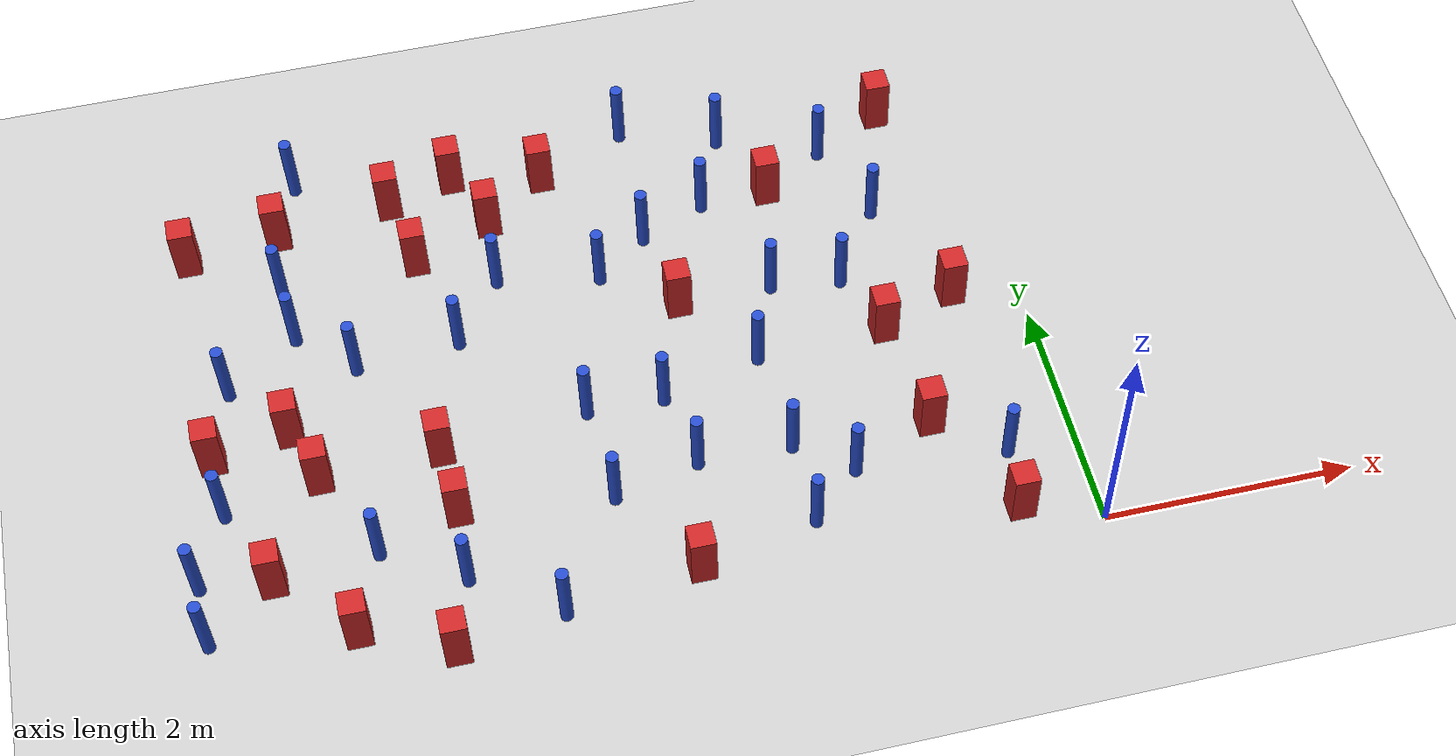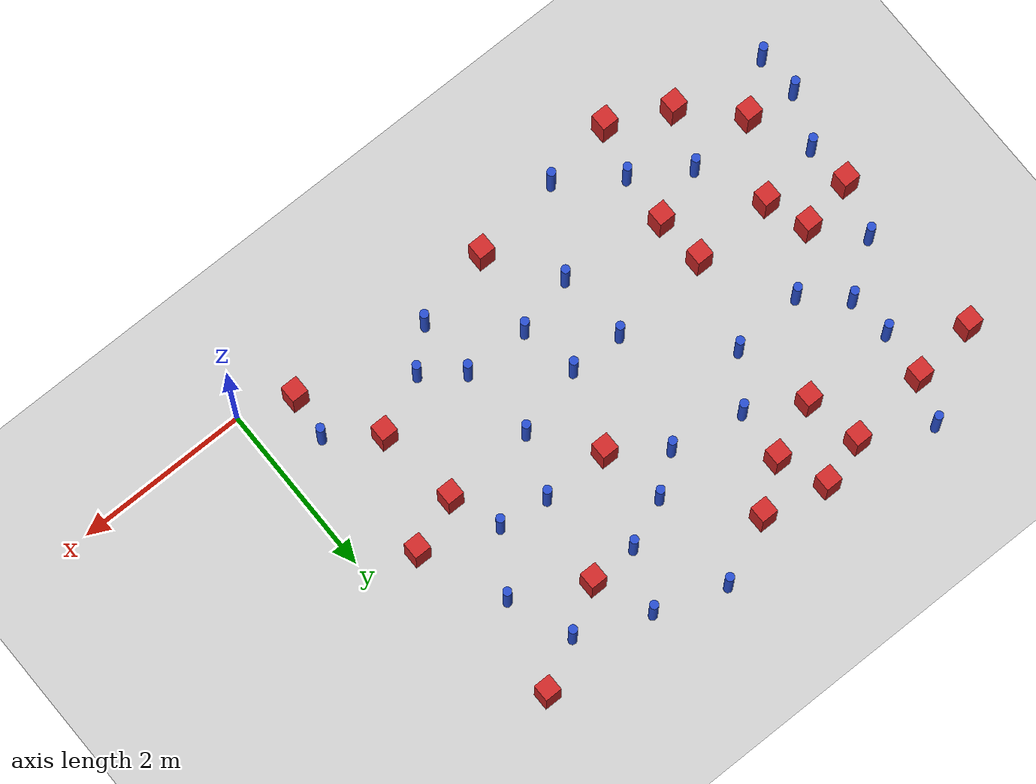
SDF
<sdf version="1.6">
 <world name="default">
  <model name="ground_plane">
   <static>1</static>
   <link name="link">
    <collision name="collision">
     <geometry><plane><normal>0 0 1</normal><size>100 100</size></plane></geometry>
     <surface><friction><ode><mu>100</mu><mu2>50</mu2></ode></friction></surface>
    </collision>
    <visual name="visual">
     <cast_shadows>0</cast_shadows>
     <geometry><plane><normal>0 0 1</normal><size>100 100</size></plane></geometry>
     <material>
      <ambient>1.0 1.0 1.0 1.0</ambient>
      <diffuse>0.8 0.8 0.8 1.0</diffuse>
      <specular>0.01 0.01 0.01 1.000000</specular>
     </material>
    </visual>
   </link>
  </model>
  <model name="pole_obstacle10">
   <static>true</static>
   <pose>-2.84747566872 4.63940066756 -9.47619616065e-06 5.49618799738e-07 2.3631041406e-07 -1.55090534801e-07</pose>
   <link name="link">
    <pose>0 0 0.3 0 -0 0</pose>
    <inertial>
     <mass>1</mass>
     <inertia><ixx>0.145833</ixx><ixy>0</ixy><ixz>0</ixz><iyy>0.145833</iyy><iyz>0</iyz><izz>0.125</izz></inertia>
    </inertial>
    <collision name="collision">
     <geometry><cylinder><radius>0.05</radius><length>.6</length></cylinder></geometry>
    </collision>
    <visual name="visual">
     <geometry><cylinder><radius>0.05</radius><length>.6</length></cylinder></geometry>
     <material>
      <script><name>Gazebo/Blue</name><uri>file://media/materials/scripts/gazebo.material</uri></script>
     </material>
    </visual>
   </link>
  </model>
  <model name="pole_obstacle13">
   <static>true</static>
   <pose>-2.05536858582 4.37401003135 -9.47619616065e-06 5.49618799738e-07 2.3631041406e-07 -1.55090534801e-07</pose>
   <link name="link">
    <pose>0 0 0.3 0 -0 0</pose>
    <inertial>
     <mass>1</mass>
     <inertia><ixx>0.145833</ixx><ixy>0</ixy><ixz>0</ixz><iyy>0.145833</iyy><iyz>0</iyz><izz>0.125</izz></inertia>
    </inertial>
    <collision name="collision">
     <geometry><cylinder><radius>0.05</radius><length>.6</length></cylinder></geometry>
    </collision>
    <visual name="visual">
     <geometry><cylinder><radius>0.05</radius><length>.6</length></cylinder></geometry>
     <material>
      <script><name>Gazebo/Blue</name><uri>file://media/materials/scripts/gazebo.material</uri></script>
     </material>
    </visual>
   </link>
  </model>
  <model name="square_post_obstacle23">
   <static>true</static>
   <pose>-6.5617187562 2.06889968131 -6.11067671241e-07 -5.50515727128e-06 -8.79689657224e-07 2.37013304536e-05</pose>
   <link name="link">
    <pose>0 0 0.25 0 -0 0</pose>
    <inertial>
     <mass>100</mass>
     <inertia>
      <ixx>0.166667</ixx>
      <ixy>0</ixy>
      <ixz>0</ixz>
      <iyy>0.166667</iyy>
      <iyz>0</iyz>
      <izz>0.166667</izz>
     </inertia>
    </inertial>
    <collision name="collision"><geometry><box><size>.2 .2 .5</size></box></geometry></collision>
    <visual name="visual">
     <geometry><box><size>.2 .2 .5</size></box></geometry>
     <material>
      <script><name>Gazebo/Red</name><uri>file://media/materials/scripts/gazebo.material</uri></script>
     </material>
    </visual>
   </link>
  </model>
  <model name="pole_obstacle19">
   <static>true</static>
   <pose>-1.96474461746 2.74154351915 -9.47619616065e-06 5.49618799737e-07 2.36310414076e-07 -1.55090534791e-07</pose>
   <link name="link">
    <pose>0 0 0.3 0 -0 0</pose>
    <inertial>
     <mass>1</mass>
     <inertia><ixx>0.145833</ixx><ixy>0</ixy><ixz>0</ixz><iyy>0.145833</iyy><iyz>0</iyz><izz>0.125</izz></inertia>
    </inertial>
    <collision name="collision">
     <geometry><cylinder><radius>0.05</radius><length>.6</length></cylinder></geometry>
    </collision>
    <visual name="visual">
     <geometry><cylinder><radius>0.05</radius><length>.6</length></cylinder></geometry>
     <material>
      <script><name>Gazebo/Blue</name><uri>file://media/materials/scripts/gazebo.material</uri></script>
     </material>
    </visual>
   </link>
  </model>
  <model name="square_post_obstacle33">
   <static>true</static>
   <pose>-2.73946210655 2.73730281667 -6.11067671241e-07 -5.50515727128e-06 -8.79689657224e-07 2.37013304536e-05</pose>
   <link name="link">
    <pose>0 0 0.25 0 -0 0</pose>
    <inertial>
     <mass>100</mass>
     <inertia>
      <ixx>0.166667</ixx>
      <ixy>0</ixy>
      <ixz>0</ixz>
      <iyy>0.166667</iyy>
      <iyz>0</iyz>
      <izz>0.166667</izz>
     </inertia>
    </inertial>
    <collision name="collision"><geometry><box><size>.2 .2 .5</size></box></geometry></collision>
    <visual name="visual">
     <geometry><box><size>.2 .2 .5</size></box></geometry>
     <material>
      <script><name>Gazebo/Red</name><uri>file://media/materials/scripts/gazebo.material</uri></script>
     </material>
    </visual>
   </link>
  </model>
  <model name="square_post_obstacle35">
   <static>true</static>
   <pose>-5.81347621405 4.17306674469 -6.11067671241e-07 -5.50515727128e-06 -8.79689657224e-07 2.37013304536e-05</pose>
   <link name="link">
    <pose>0 0 0.25 0 -0 0</pose>
    <inertial>
     <mass>100</mass>
     <inertia>
      <ixx>0.166667</ixx>
      <ixy>0</ixy>
      <ixz>0</ixz>
      <iyy>0.166667</iyy>
      <iyz>0</iyz>
      <izz>0.166667</izz>
     </inertia>
    </inertial>
    <collision name="collision"><geometry><box><size>.2 .2 .5</size></box></geometry></collision>
    <visual name="visual">
     <geometry><box><size>.2 .2 .5</size></box></geometry>
     <material>
      <script><name>Gazebo/Red</name><uri>file://media/materials/scripts/gazebo.material</uri></script>
     </material>
    </visual>
   </link>
  </model>
  <model name="pole_obstacle34">
   <static>true</static>
   <pose>-1.74104892177 0.853488563176 -9.47619616065e-06 5.49618799737e-07 2.36310414065e-07 -1.55090534798e-07</pose>
   <link name="link">
    <pose>0 0 0.3 0 -0 0</pose>
    <inertial>
     <mass>1</mass>
     <inertia><ixx>0.145833</ixx><ixy>0</ixy><ixz>0</ixz><iyy>0.145833</iyy><iyz>0</iyz><izz>0.125</izz></inertia>
    </inertial>
    <collision name="collision">
     <geometry><cylinder><radius>0.05</radius><length>.6</length></cylinder></geometry>
    </collision>
    <visual name="visual">
     <geometry><cylinder><radius>0.05</radius><length>.6</length></cylinder></geometry>
     <material>
      <script><name>Gazebo/Blue</name><uri>file://media/materials/scripts/gazebo.material</uri></script>
     </material>
    </visual>
   </link>
  </model>
  <model name="square_post_obstacle37">
   <static>true</static>
   <pose>-5.7784485124 1.70773281834 -6.11067671241e-07 -5.50515727128e-06 -8.79689657224e-07 2.37013304536e-05</pose>
   <link name="link">
    <pose>0 0 0.25 0 -0 0</pose>
    <inertial>
     <mass>100</mass>
     <inertia>
      <ixx>0.166667</ixx>
      <ixy>0</ixy>
      <ixz>0</ixz>
      <iyy>0.166667</iyy>
      <iyz>0</iyz>
      <izz>0.166667</izz>
     </inertia>
    </inertial>
    <collision name="collision"><geometry><box><size>.2 .2 .5</size></box></geometry></collision>
    <visual name="visual">
     <geometry><box><size>.2 .2 .5</size></box></geometry>
     <material>
      <script><name>Gazebo/Red</name><uri>file://media/materials/scripts/gazebo.material</uri></script>
     </material>
    </visual>
   </link>
  </model>
  <model name="pole_obstacle40">
   <static>true</static>
   <pose>-0.968410337781 3.31538458042 -9.47619616065e-06 5.49618799737e-07 2.36310414063e-07 -1.55090534799e-07</pose>
   <link name="link">
    <pose>0 0 0.3 0 -0 0</pose>
    <inertial>
     <mass>1</mass>
     <inertia><ixx>0.145833</ixx><ixy>0</ixy><ixz>0</ixz><iyy>0.145833</iyy><iyz>0</iyz><izz>0.125</izz></inertia>
    </inertial>
    <collision name="collision">
     <geometry><cylinder><radius>0.05</radius><length>.6</length></cylinder></geometry>
    </collision>
    <visual name="visual">
     <geometry><cylinder><radius>0.05</radius><length>.6</length></cylinder></geometry>
     <material>
      <script><name>Gazebo/Blue</name><uri>file://media/materials/scripts/gazebo.material</uri></script>
     </material>
    </visual>
   </link>
  </model>
  <model name="pole_obstacle47">
   <static>true</static>
   <pose>-3.65769776 1.86082493029 -9.47619616065e-06 5.49618799737e-07 2.36310414072e-07 -1.55090534793e-07</pose>
   <link name="link">
    <pose>0 0 0.3 0 -0 0</pose>
    <inertial>
     <mass>1</mass>
     <inertia><ixx>0.145833</ixx><ixy>0</ixy><ixz>0</ixz><iyy>0.145833</iyy><iyz>0</iyz><izz>0.125</izz></inertia>
    </inertial>
    <collision name="collision">
     <geometry><cylinder><radius>0.05</radius><length>.6</length></cylinder></geometry>
    </collision>
    <visual name="visual">
     <geometry><cylinder><radius>0.05</radius><length>.6</length></cylinder></geometry>
     <material>
      <script><name>Gazebo/Blue</name><uri>file://media/materials/scripts/gazebo.material</uri></script>
     </material>
    </visual>
   </link>
  </model>
  <model name="pole_obstacle55">
   <static>true</static>
   <pose>-1.39737739641 2.67019656271 -9.47619616065e-06 5.49618799737e-07 2.36310414062e-07 -1.55090534798e-07</pose>
   <link name="link">
    <pose>0 0 0.3 0 -0 0</pose>
    <inertial>
     <mass>1</mass>
     <inertia><ixx>0.145833</ixx><ixy>0</ixy><ixz>0</ixz><iyy>0.145833</iyy><iyz>0</iyz><izz>0.125</izz></inertia>
    </inertial>
    <collision name="collision">
     <geometry><cylinder><radius>0.05</radius><length>.6</length></cylinder></geometry>
    </collision>
    <visual name="visual">
     <geometry><cylinder><radius>0.05</radius><length>.6</length></cylinder></geometry>
     <material>
      <script><name>Gazebo/Blue</name><uri>file://media/materials/scripts/gazebo.material</uri></script>
     </material>
    </visual>
   </link>
  </model>
  <model name="pole_obstacle63">
   <static>true</static>
   <pose>-5.62077184653 4.68506538649 -9.47619616065e-06 5.49618799737e-07 2.36310414037e-07 -1.55090534814e-07</pose>
   <link name="link">
    <pose>0 0 0.3 0 -0 0</pose>
    <inertial>
     <mass>1</mass>
     <inertia><ixx>0.145833</ixx><ixy>0</ixy><ixz>0</ixz><iyy>0.145833</iyy><iyz>0</iyz><izz>0.125</izz></inertia>
    </inertial>
    <collision name="collision">
     <geometry><cylinder><radius>0.05</radius><length>.6</length></cylinder></geometry>
    </collision>
    <visual name="visual">
     <geometry><cylinder><radius>0.05</radius><length>.6</length></cylinder></geometry>
     <material>
      <script><name>Gazebo/Blue</name><uri>file://media/materials/scripts/gazebo.material</uri></script>
     </material>
    </visual>
   </link>
  </model>
  <model name="square_post_obstacle67">
   <static>true</static>
   <pose>-4.82985129881 1.74842242431 -6.11067671241e-07 -5.50515727128e-06 -8.79689657224e-07 2.37013304536e-05</pose>
   <link name="link">
    <pose>0 0 0.25 0 -0 0</pose>
    <inertial>
     <mass>100</mass>
     <inertia>
      <ixx>0.166667</ixx>
      <ixy>0</ixy>
      <ixz>0</ixz>
      <iyy>0.166667</iyy>
      <iyz>0</iyz>
      <izz>0.166667</izz>
     </inertia>
    </inertial>
    <collision name="collision"><geometry><box><size>.2 .2 .5</size></box></geometry></collision>
    <visual name="visual">
     <geometry><box><size>.2 .2 .5</size></box></geometry>
     <material>
      <script><name>Gazebo/Red</name><uri>file://media/materials/scripts/gazebo.material</uri></script>
     </material>
    </visual>
   </link>
  </model>
  <model name="square_post_obstacle68">
   <static>true</static>
   <pose>-4.74384137208 3.6503750225 -6.11067671241e-07 -5.50515727128e-06 -8.79689657224e-07 2.37013304536e-05</pose>
   <link name="link">
    <pose>0 0 0.25 0 -0 0</pose>
    <inertial>
     <mass>100</mass>
     <inertia>
      <ixx>0.166667</ixx>
      <ixy>0</ixy>
      <ixz>0</ixz>
      <iyy>0.166667</iyy>
      <iyz>0</iyz>
      <izz>0.166667</izz>
     </inertia>
    </inertial>
    <collision name="collision"><geometry><box><size>.2 .2 .5</size></box></geometry></collision>
    <visual name="visual">
     <geometry><box><size>.2 .2 .5</size></box></geometry>
     <material>
      <script><name>Gazebo/Red</name><uri>file://media/materials/scripts/gazebo.material</uri></script>
     </material>
    </visual>
   </link>
  </model>
  <model name="pole_obstacle85">
   <static>true</static>
   <pose>-2.33176359525 3.71400270867 -9.47619616065e-06 5.49618799737e-07 2.36310414051e-07 -1.55090534807e-07</pose>
   <link name="link">
    <pose>0 0 0.3 0 -0 0</pose>
    <inertial>
     <mass>1</mass>
     <inertia><ixx>0.145833</ixx><ixy>0</ixy><ixz>0</ixz><iyy>0.145833</iyy><iyz>0</iyz><izz>0.125</izz></inertia>
    </inertial>
    <collision name="collision">
     <geometry><cylinder><radius>0.05</radius><length>.6</length></cylinder></geometry>
    </collision>
    <visual name="visual">
     <geometry><cylinder><radius>0.05</radius><length>.6</length></cylinder></geometry>
     <material>
      <script><name>Gazebo/Blue</name><uri>file://media/materials/scripts/gazebo.material</uri></script>
     </material>
    </visual>
   </link>
  </model>
  <model name="pole_obstacle89">
   <static>true</static>
   <pose>-3.04312974617 1.84816979758 -9.47619616065e-06 5.49618799737e-07 2.36310414072e-07 -1.55090534793e-07</pose>
   <link name="link">
    <pose>0 0 0.3 0 -0 0</pose>
    <inertial>
     <mass>1</mass>
     <inertia><ixx>0.145833</ixx><ixy>0</ixy><ixz>0</ixz><iyy>0.145833</iyy><iyz>0</iyz><izz>0.125</izz></inertia>
    </inertial>
    <collision name="collision">
     <geometry><cylinder><radius>0.05</radius><length>.6</length></cylinder></geometry>
    </collision>
    <visual name="visual">
     <geometry><cylinder><radius>0.05</radius><length>.6</length></cylinder></geometry>
     <material>
      <script><name>Gazebo/Blue</name><uri>file://media/materials/scripts/gazebo.material</uri></script>
     </material>
    </visual>
   </link>
  </model>
  <model name="pole_obstacle90">
   <static>true</static>
   <pose>-2.23216415459 2.0634316478 -9.47619616065e-06 5.49618799737e-07 2.36310414051e-07 -1.55090534807e-07</pose>
   <link name="link">
    <pose>0 0 0.3 0 -0 0</pose>
    <inertial>
     <mass>1</mass>
     <inertia><ixx>0.145833</ixx><ixy>0</ixy><ixz>0</ixz><iyy>0.145833</iyy><iyz>0</iyz><izz>0.125</izz></inertia>
    </inertial>
    <collision name="collision">
     <geometry><cylinder><radius>0.05</radius><length>.6</length></cylinder></geometry>
    </collision>
    <visual name="visual">
     <geometry><cylinder><radius>0.05</radius><length>.6</length></cylinder></geometry>
     <material>
      <script><name>Gazebo/Blue</name><uri>file://media/materials/scripts/gazebo.material</uri></script>
     </material>
    </visual>
   </link>
  </model>
  <model name="pole_obstacle93">
   <static>true</static>
   <pose>-2.87588941284 3.47614644575 -9.47619616065e-06 5.49618799737e-07 2.36310414051e-07 -1.55090534807e-07</pose>
   <link name="link">
    <pose>0 0 0.3 0 -0 0</pose>
    <inertial>
     <mass>1</mass>
     <inertia><ixx>0.145833</ixx><ixy>0</ixy><ixz>0</ixz><iyy>0.145833</iyy><iyz>0</iyz><izz>0.125</izz></inertia>
    </inertial>
    <collision name="collision">
     <geometry><cylinder><radius>0.05</radius><length>.6</length></cylinder></geometry>
    </collision>
    <visual name="visual">
     <geometry><cylinder><radius>0.05</radius><length>.6</length></cylinder></geometry>
     <material>
      <script><name>Gazebo/Blue</name><uri>file://media/materials/scripts/gazebo.material</uri></script>
     </material>
    </visual>
   </link>
  </model>
  <model name="pole_obstacle96">
   <static>true</static>
   <pose>-5.36302089445 2.70412115634 -9.47619616065e-06 5.49618799738e-07 2.36310414051e-07 -1.55090534805e-07</pose>
   <link name="link">
    <pose>0 0 0.3 0 -0 0</pose>
    <inertial>
     <mass>1</mass>
     <inertia><ixx>0.145833</ixx><ixy>0</ixy><ixz>0</ixz><iyy>0.145833</iyy><iyz>0</iyz><izz>0.125</izz></inertia>
    </inertial>
    <collision name="collision">
     <geometry><cylinder><radius>0.05</radius><length>.6</length></cylinder></geometry>
    </collision>
    <visual name="visual">
     <geometry><cylinder><radius>0.05</radius><length>.6</length></cylinder></geometry>
     <material>
      <script><name>Gazebo/Blue</name><uri>file://media/materials/scripts/gazebo.material</uri></script>
     </material>
    </visual>
   </link>
  </model>
  <model name="square_post_obstacle89">
   <static>true</static>
   <pose>-4.32945967449 4.45762781155 -6.11067671241e-07 -5.50515727128e-06 -8.79689657224e-07 2.37013304536e-05</pose>
   <link name="link">
    <pose>0 0 0.25 0 -0 0</pose>
    <inertial>
     <mass>100</mass>
     <inertia>
      <ixx>0.166667</ixx>
      <ixy>0</ixy>
      <ixz>0</ixz>
      <iyy>0.166667</iyy>
      <iyz>0</iyz>
      <izz>0.166667</izz>
     </inertia>
    </inertial>
    <collision name="collision"><geometry><box><size>.2 .2 .5</size></box></geometry></collision>
    <visual name="visual">
     <geometry><box><size>.2 .2 .5</size></box></geometry>
     <material>
      <script><name>Gazebo/Red</name><uri>file://media/materials/scripts/gazebo.material</uri></script>
     </material>
    </visual>
   </link>
  </model>
  <model name="pole_obstacle106">
   <static>true</static>
   <pose>-2.14773639542 0.476922832453 -9.47619616065e-06 5.49618799737e-07 2.36310414078e-07 -1.55090534791e-07</pose>
   <link name="link">
    <pose>0 0 0.3 0 -0 0</pose>
    <inertial>
     <mass>1</mass>
     <inertia><ixx>0.145833</ixx><ixy>0</ixy><ixz>0</ixz><iyy>0.145833</iyy><iyz>0</iyz><izz>0.125</izz></inertia>
    </inertial>
    <collision name="collision">
     <geometry><cylinder><radius>0.05</radius><length>.6</length></cylinder></geometry>
    </collision>
    <visual name="visual">
     <geometry><cylinder><radius>0.05</radius><length>.6</length></cylinder></geometry>
     <material>
      <script><name>Gazebo/Blue</name><uri>file://media/materials/scripts/gazebo.material</uri></script>
     </material>
    </visual>
   </link>
  </model>
  <model name="square_post_obstacle94">
   <static>true</static>
   <pose>-4.98028352813 -0.0115146847185 -6.11067671241e-07 -5.50515727128e-06 -8.79689657224e-07 2.37013304536e-05</pose>
   <link name="link">
    <pose>0 0 0.25 0 -0 0</pose>
    <inertial>
     <mass>100</mass>
     <inertia>
      <ixx>0.166667</ixx>
      <ixy>0</ixy>
      <ixz>0</ixz>
      <iyy>0.166667</iyy>
      <iyz>0</iyz>
      <izz>0.166667</izz>
     </inertia>
    </inertial>
    <collision name="collision"><geometry><box><size>.2 .2 .5</size></box></geometry></collision>
    <visual name="visual">
     <geometry><box><size>.2 .2 .5</size></box></geometry>
     <material>
      <script><name>Gazebo/Red</name><uri>file://media/materials/scripts/gazebo.material</uri></script>
     </material>
    </visual>
   </link>
  </model>
  <model name="pole_obstacle112">
   <static>true</static>
   <pose>-3.59655836508 1.03027827696 -9.47619616065e-06 5.49618799737e-07 2.36310414032e-07 -1.55090534818e-07</pose>
   <link name="link">
    <pose>0 0 0.3 0 -0 0</pose>
    <inertial>
     <mass>1</mass>
     <inertia><ixx>0.145833</ixx><ixy>0</ixy><ixz>0</ixz><iyy>0.145833</iyy><iyz>0</iyz><izz>0.125</izz></inertia>
    </inertial>
    <collision name="collision">
     <geometry><cylinder><radius>0.05</radius><length>.6</length></cylinder></geometry>
    </collision>
    <visual name="visual">
     <geometry><cylinder><radius>0.05</radius><length>.6</length></cylinder></geometry>
     <material>
      <script><name>Gazebo/Blue</name><uri>file://media/materials/scripts/gazebo.material</uri></script>
     </material>
    </visual>
   </link>
  </model>
  <model name="pole_obstacle114">
   <static>true</static>
   <pose>-1.24529449716 4.04644639456 -9.47619616065e-06 5.49618799737e-07 2.3631041406e-07 -1.55090534801e-07</pose>
   <link name="link">
    <pose>0 0 0.3 0 -0 0</pose>
    <inertial>
     <mass>1</mass>
     <inertia><ixx>0.145833</ixx><ixy>0</ixy><ixz>0</ixz><iyy>0.145833</iyy><iyz>0</iyz><izz>0.125</izz></inertia>
    </inertial>
    <collision name="collision">
     <geometry><cylinder><radius>0.05</radius><length>.6</length></cylinder></geometry>
    </collision>
    <visual name="visual">
     <geometry><cylinder><radius>0.05</radius><length>.6</length></cylinder></geometry>
     <material>
      <script><name>Gazebo/Blue</name><uri>file://media/materials/scripts/gazebo.material</uri></script>
     </material>
    </visual>
   </link>
  </model>
  <model name="square_post_obstacle102">
   <static>true</static>
   <pose>-3.08723056517 0.266855083749 -6.11067671241e-07 -5.50515727128e-06 -8.79689657224e-07 2.37013304536e-05</pose>
   <link name="link">
    <pose>0 0 0.25 0 -0 0</pose>
    <inertial>
     <mass>100</mass>
     <inertia>
      <ixx>0.166667</ixx>
      <ixy>0</ixy>
      <ixz>0</ixz>
      <iyy>0.166667</iyy>
      <iyz>0</iyz>
      <izz>0.166667</izz>
     </inertia>
    </inertial>
    <collision name="collision"><geometry><box><size>.2 .2 .5</size></box></geometry></collision>
    <visual name="visual">
     <geometry><box><size>.2 .2 .5</size></box></geometry>
     <material>
      <script><name>Gazebo/Red</name><uri>file://media/materials/scripts/gazebo.material</uri></script>
     </material>
    </visual>
   </link>
  </model>
  <model name="pole_obstacle117">
   <static>true</static>
   <pose>-4.130843217 3.3147042614 -9.47619616065e-06 5.49618799738e-07 2.36310414051e-07 -1.55090534805e-07</pose>
   <link name="link">
    <pose>0 0 0.3 0 -0 0</pose>
    <inertial>
     <mass>1</mass>
     <inertia><ixx>0.145833</ixx><ixy>0</ixy><ixz>0</ixz><iyy>0.145833</iyy><iyz>0</iyz><izz>0.125</izz></inertia>
    </inertial>
    <collision name="collision">
     <geometry><cylinder><radius>0.05</radius><length>.6</length></cylinder></geometry>
    </collision>
    <visual name="visual">
     <geometry><cylinder><radius>0.05</radius><length>.6</length></cylinder></geometry>
     <material>
      <script><name>Gazebo/Blue</name><uri>file://media/materials/scripts/gazebo.material</uri></script>
     </material>
    </visual>
   </link>
  </model>
  <model name="square_post_obstacle112">
   <static>true</static>
   <pose>-3.59323463918 4.29859449339 -6.11067671241e-07 -5.50515727128e-06 -8.79689657224e-07 2.37013304536e-05</pose>
   <link name="link">
    <pose>0 0 0.25 0 -0 0</pose>
    <inertial>
     <mass>100</mass>
     <inertia>
      <ixx>0.166667</ixx>
      <ixy>0</ixy>
      <ixz>0</ixz>
      <iyy>0.166667</iyy>
      <iyz>0</iyz>
      <izz>0.166667</izz>
     </inertia>
    </inertial>
    <collision name="collision"><geometry><box><size>.2 .2 .5</size></box></geometry></collision>
    <visual name="visual">
     <geometry><box><size>.2 .2 .5</size></box></geometry>
     <material>
      <script><name>Gazebo/Red</name><uri>file://media/materials/scripts/gazebo.material</uri></script>
     </material>
    </visual>
   </link>
  </model>
  <model name="pole_obstacle126">
   <static>true</static>
   <pose>-6.77699340018 0.960020211236 -9.47619616065e-06 5.49618799737e-07 2.36310414073e-07 -1.55090534792e-07</pose>
   <link name="link">
    <pose>0 0 0.3 0 -0 0</pose>
    <inertial>
     <mass>1</mass>
     <inertia><ixx>0.145833</ixx><ixy>0</ixy><ixz>0</ixz><iyy>0.145833</iyy><iyz>0</iyz><izz>0.125</izz></inertia>
    </inertial>
    <collision name="collision">
     <geometry><cylinder><radius>0.05</radius><length>.6</length></cylinder></geometry>
    </collision>
    <visual name="visual">
     <geometry><cylinder><radius>0.05</radius><length>.6</length></cylinder></geometry>
     <material>
      <script><name>Gazebo/Blue</name><uri>file://media/materials/scripts/gazebo.material</uri></script>
     </material>
    </visual>
   </link>
  </model>
  <model name="pole_obstacle129">
   <static>true</static>
   <pose>-6.75443482033 0.459123970886 -9.47619616065e-06 5.49618799737e-07 2.3631041407e-07 -1.55090534796e-07</pose>
   <link name="link">
    <pose>0 0 0.3 0 -0 0</pose>
    <inertial>
     <mass>1</mass>
     <inertia><ixx>0.145833</ixx><ixy>0</ixy><ixz>0</ixz><iyy>0.145833</iyy><iyz>0</iyz><izz>0.125</izz></inertia>
    </inertial>
    <collision name="collision">
     <geometry><cylinder><radius>0.05</radius><length>.6</length></cylinder></geometry>
    </collision>
    <visual name="visual">
     <geometry><cylinder><radius>0.05</radius><length>.6</length></cylinder></geometry>
     <material>
      <script><name>Gazebo/Blue</name><uri>file://media/materials/scripts/gazebo.material</uri></script>
     </material>
    </visual>
   </link>
  </model>
  <model name="pole_obstacle131">
   <static>true</static>
   <pose>-2.91278561754 1.19781759204 -9.47619616065e-06 5.49618799737e-07 2.36310414072e-07 -1.55090534793e-07</pose>
   <link name="link">
    <pose>0 0 0.3 0 -0 0</pose>
    <inertial>
     <mass>1</mass>
     <inertia><ixx>0.145833</ixx><ixy>0</ixy><ixz>0</ixz><iyy>0.145833</iyy><iyz>0</iyz><izz>0.125</izz></inertia>
    </inertial>
    <collision name="collision">
     <geometry><cylinder><radius>0.05</radius><length>.6</length></cylinder></geometry>
    </collision>
    <visual name="visual">
     <geometry><cylinder><radius>0.05</radius><length>.6</length></cylinder></geometry>
     <material>
      <script><name>Gazebo/Blue</name><uri>file://media/materials/scripts/gazebo.material</uri></script>
     </material>
    </visual>
   </link>
  </model>
  <model name="square_post_obstacle118">
   <static>true</static>
   <pose>-1.18641653807 2.10496897093 -6.11067671241e-07 -5.50515727128e-06 -8.79689657224e-07 2.37013304536e-05</pose>
   <link name="link">
    <pose>0 0 0.25 0 -0 0</pose>
    <inertial>
     <mass>100</mass>
     <inertia>
      <ixx>0.166667</ixx>
      <ixy>0</ixy>
      <ixz>0</ixz>
      <iyy>0.166667</iyy>
      <iyz>0</iyz>
      <izz>0.166667</izz>
     </inertia>
    </inertial>
    <collision name="collision"><geometry><box><size>.2 .2 .5</size></box></geometry></collision>
    <visual name="visual">
     <geometry><box><size>.2 .2 .5</size></box></geometry>
     <material>
      <script><name>Gazebo/Red</name><uri>file://media/materials/scripts/gazebo.material</uri></script>
     </material>
    </visual>
   </link>
  </model>
  <model name="pole_obstacle139">
   <static>true</static>
   <pose>-5.8488701897 3.60707491431 -9.47619616065e-06 5.49618799738e-07 2.36310414051e-07 -1.55090534805e-07</pose>
   <link name="link">
    <pose>0 0 0.3 0 -0 0</pose>
    <inertial>
     <mass>1</mass>
     <inertia><ixx>0.145833</ixx><ixy>0</ixy><ixz>0</ixz><iyy>0.145833</iyy><iyz>0</iyz><izz>0.125</izz></inertia>
    </inertial>
    <collision name="collision">
     <geometry><cylinder><radius>0.05</radius><length>.6</length></cylinder></geometry>
    </collision>
    <visual name="visual">
     <geometry><cylinder><radius>0.05</radius><length>.6</length></cylinder></geometry>
     <material>
      <script><name>Gazebo/Blue</name><uri>file://media/materials/scripts/gazebo.material</uri></script>
     </material>
    </visual>
   </link>
  </model>
  <model name="pole_obstacle141">
   <static>true</static>
   <pose>-6.37733849621 2.68906521309 -9.47619616065e-06 5.49618799738e-07 2.36310414051e-07 -1.55090534805e-07</pose>
   <link name="link">
    <pose>0 0 0.3 0 -0 0</pose>
    <inertial>
     <mass>1</mass>
     <inertia><ixx>0.145833</ixx><ixy>0</ixy><ixz>0</ixz><iyy>0.145833</iyy><iyz>0</iyz><izz>0.125</izz></inertia>
    </inertial>
    <collision name="collision">
     <geometry><cylinder><radius>0.05</radius><length>.6</length></cylinder></geometry>
    </collision>
    <visual name="visual">
     <geometry><cylinder><radius>0.05</radius><length>.6</length></cylinder></geometry>
     <material>
      <script><name>Gazebo/Blue</name><uri>file://media/materials/scripts/gazebo.material</uri></script>
     </material>
    </visual>
   </link>
  </model>
  <model name="pole_obstacle143">
   <static>true</static>
   <pose>-4.14599090629 0.117883519495 -9.47619616065e-06 5.49618799737e-07 2.36310414067e-07 -1.55090534797e-07</pose>
   <link name="link">
    <pose>0 0 0.3 0 -0 0</pose>
    <inertial>
     <mass>1</mass>
     <inertia><ixx>0.145833</ixx><ixy>0</ixy><ixz>0</ixz><iyy>0.145833</iyy><iyz>0</iyz><izz>0.125</izz></inertia>
    </inertial>
    <collision name="collision">
     <geometry><cylinder><radius>0.05</radius><length>.6</length></cylinder></geometry>
    </collision>
    <visual name="visual">
     <geometry><cylinder><radius>0.05</radius><length>.6</length></cylinder></geometry>
     <material>
      <script><name>Gazebo/Blue</name><uri>file://media/materials/scripts/gazebo.material</uri></script>
     </material>
    </visual>
   </link>
  </model>
  <model name="square_post_obstacle135">
   <static>true</static>
   <pose>-4.87333871014 4.29370896122 -6.11067671241e-07 -5.50515727128e-06 -8.79689657224e-07 2.37013304536e-05</pose>
   <link name="link">
    <pose>0 0 0.25 0 -0 0</pose>
    <inertial>
     <mass>100</mass>
     <inertia>
      <ixx>0.166667</ixx>
      <ixy>0</ixy>
      <ixz>0</ixz>
      <iyy>0.166667</iyy>
      <iyz>0</iyz>
      <izz>0.166667</izz>
     </inertia>
    </inertial>
    <collision name="collision"><geometry><box><size>.2 .2 .5</size></box></geometry></collision>
    <visual name="visual">
     <geometry><box><size>.2 .2 .5</size></box></geometry>
     <material>
      <script><name>Gazebo/Red</name><uri>file://media/materials/scripts/gazebo.material</uri></script>
     </material>
    </visual>
   </link>
  </model>
  <model name="square_post_obstacle137">
   <static>true</static>
   <pose>-6.56253599348 4.07746301283 -6.11067671241e-07 -5.50515727128e-06 -8.79689657224e-07 2.37013304536e-05</pose>
   <link name="link">
    <pose>0 0 0.25 0 -0 0</pose>
    <inertial>
     <mass>100</mass>
     <inertia>
      <ixx>0.166667</ixx>
      <ixy>0</ixy>
      <ixz>0</ixz>
      <iyy>0.166667</iyy>
      <iyz>0</iyz>
      <izz>0.166667</izz>
     </inertia>
    </inertial>
    <collision name="collision"><geometry><box><size>.2 .2 .5</size></box></geometry></collision>
    <visual name="visual">
     <geometry><box><size>.2 .2 .5</size></box></geometry>
     <material>
      <script><name>Gazebo/Red</name><uri>file://media/materials/scripts/gazebo.material</uri></script>
     </material>
    </visual>
   </link>
  </model>
  <model name="square_post_obstacle139">
   <static>true</static>
   <pose>-6.22788766553 0.869778117595 -6.11067671241e-07 -5.50515727128e-06 -8.79689657224e-07 2.37013304536e-05</pose>
   <link name="link">
    <pose>0 0 0.25 0 -0 0</pose>
    <inertial>
     <mass>100</mass>
     <inertia>
      <ixx>0.166667</ixx>
      <ixy>0</ixy>
      <ixz>0</ixz>
      <iyy>0.166667</iyy>
      <iyz>0</iyz>
      <izz>0.166667</izz>
     </inertia>
    </inertial>
    <collision name="collision"><geometry><box><size>.2 .2 .5</size></box></geometry></collision>
    <visual name="visual">
     <geometry><box><size>.2 .2 .5</size></box></geometry>
     <material>
      <script><name>Gazebo/Red</name><uri>file://media/materials/scripts/gazebo.material</uri></script>
     </material>
    </visual>
   </link>
  </model>
  <model name="pole_obstacle151">
   <static>true</static>
   <pose>-4.80567982348 0.575869292301 -9.47619616065e-06 5.49618799737e-07 2.36310414061e-07 -1.550905348e-07</pose>
   <link name="link">
    <pose>0 0 0.3 0 -0 0</pose>
    <inertial>
     <mass>1</mass>
     <inertia><ixx>0.145833</ixx><ixy>0</ixy><ixz>0</ixz><iyy>0.145833</iyy><iyz>0</iyz><izz>0.125</izz></inertia>
    </inertial>
    <collision name="collision">
     <geometry><cylinder><radius>0.05</radius><length>.6</length></cylinder></geometry>
    </collision>
    <visual name="visual">
     <geometry><cylinder><radius>0.05</radius><length>.6</length></cylinder></geometry>
     <material>
      <script><name>Gazebo/Blue</name><uri>file://media/materials/scripts/gazebo.material</uri></script>
     </material>
    </visual>
   </link>
  </model>
  <model name="square_post_obstacle148">
   <static>true</static>
   <pose>-1.07315426279 1.14892116384 -6.11067671241e-07 -5.50515727128e-06 -8.79689657224e-07 2.37013304536e-05</pose>
   <link name="link">
    <pose>0 0 0.25 0 -0 0</pose>
    <inertial>
     <mass>100</mass>
     <inertia>
      <ixx>0.166667</ixx>
      <ixy>0</ixy>
      <ixz>0</ixz>
      <iyy>0.166667</iyy>
      <iyz>0</iyz>
      <izz>0.166667</izz>
     </inertia>
    </inertial>
    <collision name="collision"><geometry><box><size>.2 .2 .5</size></box></geometry></collision>
    <visual name="visual">
     <geometry><box><size>.2 .2 .5</size></box></geometry>
     <material>
      <script><name>Gazebo/Red</name><uri>file://media/materials/scripts/gazebo.material</uri></script>
     </material>
    </visual>
   </link>
  </model>
  <model name="square_post_obstacle150">
   <static>true</static>
   <pose>-0.671761182851 4.34220808506 -6.11067671241e-07 -5.50515727128e-06 -8.79689657224e-07 2.37013304536e-05</pose>
   <link name="link">
    <pose>0 0 0.25 0 -0 0</pose>
    <inertial>
     <mass>100</mass>
     <inertia>
      <ixx>0.166667</ixx>
      <ixy>0</ixy>
      <ixz>0</ixz>
      <iyy>0.166667</iyy>
      <iyz>0</iyz>
      <izz>0.166667</izz>
     </inertia>
    </inertial>
    <collision name="collision"><geometry><box><size>.2 .2 .5</size></box></geometry></collision>
    <visual name="visual">
     <geometry><box><size>.2 .2 .5</size></box></geometry>
     <material>
      <script><name>Gazebo/Red</name><uri>file://media/materials/scripts/gazebo.material</uri></script>
     </material>
    </visual>
   </link>
  </model>
  <model name="square_post_obstacle151">
   <static>true</static>
   <pose>-5.66476409841 0.302262209345 -6.11067671241e-07 -5.50515727128e-06 -8.79689657224e-07 2.37013304536e-05</pose>
   <link name="link">
    <pose>0 0 0.25 0 -0 0</pose>
    <inertial>
     <mass>100</mass>
     <inertia>
      <ixx>0.166667</ixx>
      <ixy>0</ixy>
      <ixz>0</ixz>
      <iyy>0.166667</iyy>
      <iyz>0</iyz>
      <izz>0.166667</izz>
     </inertia>
    </inertial>
    <collision name="collision"><geometry><box><size>.2 .2 .5</size></box></geometry></collision>
    <visual name="visual">
     <geometry><box><size>.2 .2 .5</size></box></geometry>
     <material>
      <script><name>Gazebo/Red</name><uri>file://media/materials/scripts/gazebo.material</uri></script>
     </material>
    </visual>
   </link>
  </model>
  <model name="pole_obstacle158">
   <static>true</static>
   <pose>-6.52372257096 1.55804698546 -9.47619616065e-06 5.49618799738e-07 2.36310414071e-07 -1.55090534796e-07</pose>
   <link name="link">
    <pose>0 0 0.3 0 -0 0</pose>
    <inertial>
     <mass>1</mass>
     <inertia><ixx>0.145833</ixx><ixy>0</ixy><ixz>0</ixz><iyy>0.145833</iyy><iyz>0</iyz><izz>0.125</izz></inertia>
    </inertial>
    <collision name="collision">
     <geometry><cylinder><radius>0.05</radius><length>.6</length></cylinder></geometry>
    </collision>
    <visual name="visual">
     <geometry><cylinder><radius>0.05</radius><length>.6</length></cylinder></geometry>
     <material>
      <script><name>Gazebo/Blue</name><uri>file://media/materials/scripts/gazebo.material</uri></script>
     </material>
    </visual>
   </link>
  </model>
  <model name="pole_obstacle167">
   <static>true</static>
   <pose>-2.16500748755 1.17993057269 -9.47619616065e-06 5.49618799737e-07 2.36310414072e-07 -1.55090534793e-07</pose>
   <link name="link">
    <pose>0 0 0.3 0 -0 0</pose>
    <inertial>
     <mass>1</mass>
     <inertia><ixx>0.145833</ixx><ixy>0</ixy><ixz>0</ixz><iyy>0.145833</iyy><iyz>0</iyz><izz>0.125</izz></inertia>
    </inertial>
    <collision name="collision">
     <geometry><cylinder><radius>0.05</radius><length>.6</length></cylinder></geometry>
    </collision>
    <visual name="visual">
     <geometry><cylinder><radius>0.05</radius><length>.6</length></cylinder></geometry>
     <material>
      <script><name>Gazebo/Blue</name><uri>file://media/materials/scripts/gazebo.material</uri></script>
     </material>
    </visual>
   </link>
  </model>
  <model name="pole_obstacle170">
   <static>true</static>
   <pose>-0.547225466535 0.749120927474 -9.47619616065e-06 5.49618799737e-07 2.36310414066e-07 -1.55090534796e-07</pose>
   <link name="link">
    <pose>0 0 0.3 0 -0 0</pose>
    <inertial>
     <mass>1</mass>
     <inertia><ixx>0.145833</ixx><ixy>0</ixy><ixz>0</ixz><iyy>0.145833</iyy><iyz>0</iyz><izz>0.125</izz></inertia>
    </inertial>
    <collision name="collision">
     <geometry><cylinder><radius>0.05</radius><length>.6</length></cylinder></geometry>
    </collision>
    <visual name="visual">
     <geometry><cylinder><radius>0.05</radius><length>.6</length></cylinder></geometry>
     <material>
      <script><name>Gazebo/Blue</name><uri>file://media/materials/scripts/gazebo.material</uri></script>
     </material>
    </visual>
   </link>
  </model>
  <model name="square_post_obstacle161">
   <static>true</static>
   <pose>-0.607348749617 0.237676774999 -6.11067671241e-07 -5.50515727128e-06 -8.79689657224e-07 2.37013304536e-05</pose>
   <link name="link">
    <pose>0 0 0.25 0 -0 0</pose>
    <inertial>
     <mass>100</mass>
     <inertia>
      <ixx>0.166667</ixx>
      <ixy>0</ixy>
      <ixz>0</ixz>
      <iyy>0.166667</iyy>
      <iyz>0</iyz>
      <izz>0.166667</izz>
     </inertia>
    </inertial>
    <collision name="collision"><geometry><box><size>.2 .2 .5</size></box></geometry></collision>
    <visual name="visual">
     <geometry><box><size>.2 .2 .5</size></box></geometry>
     <material>
      <script><name>Gazebo/Red</name><uri>file://media/materials/scripts/gazebo.material</uri></script>
     </material>
    </visual>
   </link>
  </model>
  <model name="pole_obstacle171">
   <static>true</static>
   <pose>-4.52833957662 2.77065984043 -9.47619616065e-06 5.49618799738e-07 2.36310414051e-07 -1.55090534805e-07</pose>
   <link name="link">
    <pose>0 0 0.3 0 -0 0</pose>
    <inertial>
     <mass>1</mass>
     <inertia><ixx>0.145833</ixx><ixy>0</ixy><ixz>0</ixz><iyy>0.145833</iyy><iyz>0</iyz><izz>0.125</izz></inertia>
    </inertial>
    <collision name="collision">
     <geometry><cylinder><radius>0.05</radius><length>.6</length></cylinder></geometry>
    </collision>
    <visual name="visual">
     <geometry><cylinder><radius>0.05</radius><length>.6</length></cylinder></geometry>
     <material>
      <script><name>Gazebo/Blue</name><uri>file://media/materials/scripts/gazebo.material</uri></script>
     </material>
    </visual>
   </link>
  </model>
  <model name="square_post_obstacle180">
   <static>true</static>
   <pose>-4.78529197849 1.17205421687 -6.11067671241e-07 -5.50515727128e-06 -8.79689657224e-07 2.37013304536e-05</pose>
   <link name="link">
    <pose>0 0 0.25 0 -0 0</pose>
    <inertial>
     <mass>100</mass>
     <inertia>
      <ixx>0.166667</ixx>
      <ixy>0</ixy>
      <ixz>0</ixz>
      <iyy>0.166667</iyy>
      <iyz>0</iyz>
      <izz>0.166667</izz>
     </inertia>
    </inertial>
    <collision name="collision"><geometry><box><size>.2 .2 .5</size></box></geometry></collision>
    <visual name="visual">
     <geometry><box><size>.2 .2 .5</size></box></geometry>
     <material>
      <script><name>Gazebo/Red</name><uri>file://media/materials/scripts/gazebo.material</uri></script>
     </material>
    </visual>
   </link>
  </model>
  <model name="square_post_obstacle182">
   <static>true</static>
   <pose>-5.94812061623 2.19227477161 -6.11067671241e-07 -5.50515727128e-06 -8.79689657224e-07 2.37013304536e-05</pose>
   <link name="link">
    <pose>0 0 0.25 0 -0 0</pose>
    <inertial>
     <mass>100</mass>
     <inertia>
      <ixx>0.166667</ixx>
      <ixy>0</ixy>
      <ixz>0</ixz>
      <iyy>0.166667</iyy>
      <iyz>0</iyz>
      <izz>0.166667</izz>
     </inertia>
    </inertial>
    <collision name="collision"><geometry><box><size>.2 .2 .5</size></box></geometry></collision>
    <visual name="visual">
     <geometry><box><size>.2 .2 .5</size></box></geometry>
     <material>
      <script><name>Gazebo/Red</name><uri>file://media/materials/scripts/gazebo.material</uri></script>
     </material>
    </visual>
   </link>
  </model>
  <model name="square_post_obstacle196">
   <static>true</static>
   <pose>-4.09993072656 3.92030803169 -6.11067671241e-07 -5.50515727128e-06 -8.79689657224e-07 2.37013304536e-05</pose>
   <link name="link">
    <pose>0 0 0.25 0 -0 0</pose>
    <inertial>
     <mass>100</mass>
     <inertia>
      <ixx>0.166667</ixx>
      <ixy>0</ixy>
      <ixz>0</ixz>
      <iyy>0.166667</iyy>
      <iyz>0</iyz>
      <izz>0.166667</izz>
     </inertia>
    </inertial>
    <collision name="collision"><geometry><box><size>.2 .2 .5</size></box></geometry></collision>
    <visual name="visual">
     <geometry><box><size>.2 .2 .5</size></box></geometry>
     <material>
      <script><name>Gazebo/Red</name><uri>file://media/materials/scripts/gazebo.material</uri></script>
     </material>
    </visual>
   </link>
  </model>
  <model name="pole_obstacle192">
   <static>true</static>
   <pose>-3.30307571809 3.15390276477 -9.47619616065e-06 5.49618799737e-07 2.36310414067e-07 -1.55090534797e-07</pose>
   <link name="link">
    <pose>0 0 0.3 0 -0 0</pose>
    <inertial>
     <mass>1</mass>
     <inertia><ixx>0.145833</ixx><ixy>0</ixy><ixz>0</ixz><iyy>0.145833</iyy><iyz>0</iyz><izz>0.125</izz></inertia>
    </inertial>
    <collision name="collision">
     <geometry><cylinder><radius>0.05</radius><length>.6</length></cylinder></geometry>
    </collision>
    <visual name="visual">
     <geometry><cylinder><radius>0.05</radius><length>.6</length></cylinder></geometry>
     <material>
      <script><name>Gazebo/Blue</name><uri>file://media/materials/scripts/gazebo.material</uri></script>
     </material>
    </visual>
   </link>
  </model>
  <model name="square_post_obstacle205">
   <static>true</static>
   <pose>-0.562648661012 2.33749811871 -6.11067671241e-07 -5.50515727128e-06 -8.79689657224e-07 2.37013304536e-05</pose>
   <link name="link">
    <pose>0 0 0.25 0 -0 0</pose>
    <inertial>
     <mass>100</mass>
     <inertia>
      <ixx>0.166667</ixx>
      <ixy>0</ixy>
      <ixz>0</ixz>
      <iyy>0.166667</iyy>
      <iyz>0</iyz>
      <izz>0.166667</izz>
     </inertia>
    </inertial>
    <collision name="collision"><geometry><box><size>.2 .2 .5</size></box></geometry></collision>
    <visual name="visual">
     <geometry><box><size>.2 .2 .5</size></box></geometry>
     <material>
      <script><name>Gazebo/Red</name><uri>file://media/materials/scripts/gazebo.material</uri></script>
     </material>
    </visual>
   </link>
  </model>
  <model name="square_post_obstacle206">
   <static>true</static>
   <pose>-1.77850109166 3.72891149248 -6.11067671241e-07 -5.50515727128e-06 -8.79689657224e-07 2.37013304536e-05</pose>
   <link name="link">
    <pose>0 0 0.25 0 -0 0</pose>
    <inertial>
     <mass>100</mass>
     <inertia>
      <ixx>0.166667</ixx>
      <ixy>0</ixy>
      <ixz>0</ixz>
      <iyy>0.166667</iyy>
      <iyz>0</iyz>
      <izz>0.166667</izz>
     </inertia>
    </inertial>
    <collision name="collision"><geometry><box><size>.2 .2 .5</size></box></geometry></collision>
    <visual name="visual">
     <geometry><box><size>.2 .2 .5</size></box></geometry>
     <material>
      <script><name>Gazebo/Red</name><uri>file://media/materials/scripts/gazebo.material</uri></script>
     </material>
    </visual>
   </link>
  </model>
  <model name="pole_obstacle206">
   <static>true</static>
   <pose>-5.42267937924 0.955121323092 -9.47619616065e-06 5.49618799737e-07 2.36310414073e-07 -1.55090534792e-07</pose>
   <link name="link">
    <pose>0 0 0.3 0 -0 0</pose>
    <inertial>
     <mass>1</mass>
     <inertia><ixx>0.145833</ixx><ixy>0</ixy><ixz>0</ixz><iyy>0.145833</iyy><iyz>0</iyz><izz>0.125</izz></inertia>
    </inertial>
    <collision name="collision">
     <geometry><cylinder><radius>0.05</radius><length>.6</length></cylinder></geometry>
    </collision>
    <visual name="visual">
     <geometry><cylinder><radius>0.05</radius><length>.6</length></cylinder></geometry>
     <material>
      <script><name>Gazebo/Blue</name><uri>file://media/materials/scripts/gazebo.material</uri></script>
     </material>
    </visual>
   </link>
  </model>
  <model name="pole_obstacle217">
   <static>true</static>
   <pose>-5.80029659015 3.1076687389 -9.47619616065e-06 5.49618799738e-07 2.36310414051e-07 -1.55090534805e-07</pose>
   <link name="link">
    <pose>0 0 0.3 0 -0 0</pose>
    <inertial>
     <mass>1</mass>
     <inertia><ixx>0.145833</ixx><ixy>0</ixy><ixz>0</ixz><iyy>0.145833</iyy><iyz>0</iyz><izz>0.125</izz></inertia>
    </inertial>
    <collision name="collision">
     <geometry><cylinder><radius>0.05</radius><length>.6</length></cylinder></geometry>
    </collision>
    <visual name="visual">
     <geometry><cylinder><radius>0.05</radius><length>.6</length></cylinder></geometry>
     <material>
      <script><name>Gazebo/Blue</name><uri>file://media/materials/scripts/gazebo.material</uri></script>
     </material>
    </visual>
   </link>
  </model>
 </world>
</sdf>
